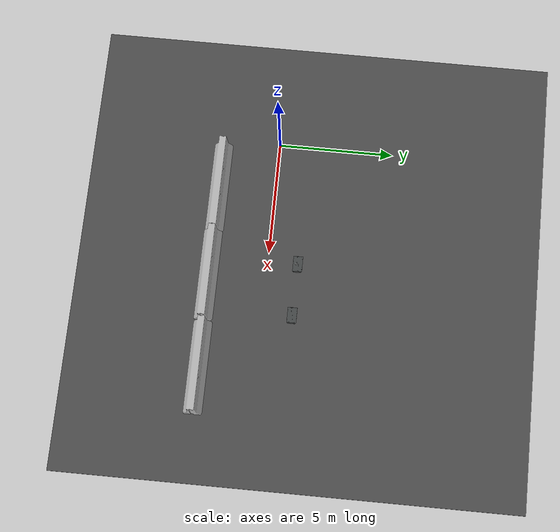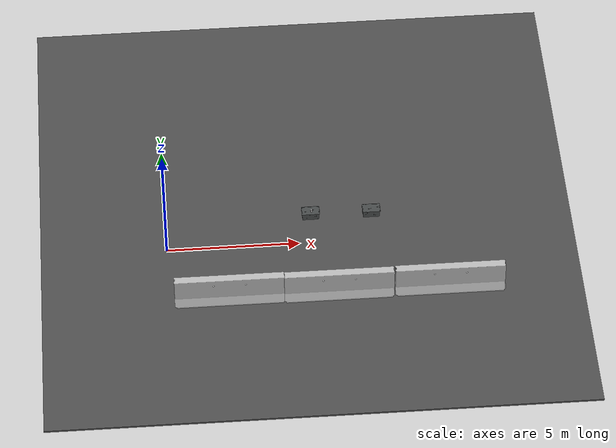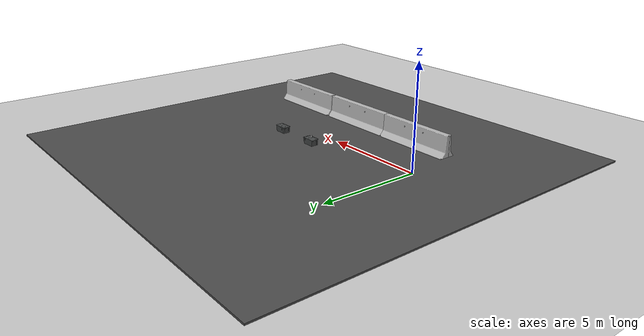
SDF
<sdf version="1.6">
 <world name="default">
  <light name="sun" type="directional">
   <pose>0 0 10 0 -0 0</pose>
   <diffuse>0.8 0.8 0.8 1</diffuse>
   <specular>0.2 0.2 0.2 1</specular>
   <attenuation>
    <range>1000</range>
    <constant>0.9</constant>
    <linear>0.01</linear>
    <quadratic>0.001</quadratic>
   </attenuation>
   <direction>-0.5 0.1 -0.9</direction>
  </light>
  <model name="ground_plane">
   <static>1</static>
   <link name="link">
    <collision name="collision">
     <geometry><plane><normal>0 0 1</normal><size>100 100</size></plane></geometry>
     <surface>
      <contact><collide_bitmask>65535</collide_bitmask></contact>
      <friction><ode><mu>100</mu><mu2>50</mu2></ode></friction>
     </surface>
    </collision>
    <visual name="visual">
     <cast_shadows>0</cast_shadows>
     <geometry><plane><normal>0 0 1</normal><size>100 100</size></plane></geometry>
     <material>
      <script><uri>file://media/materials/scripts/gazebo.material</uri><name>Gazebo/Grey</name></script>
     </material>
    </visual>
   </link>
  </model>
  <gravity>0 0 -9.8</gravity>
  <magnetic_field>6e-06 2.3e-05 -4.2e-05</magnetic_field>
  <atmosphere type="adiabatic"/>
  <physics name="default_physics" default="0" type="ode">
   <max_step_size>0.001</max_step_size>
   <real_time_factor>1</real_time_factor>
   <real_time_update_rate>1000</real_time_update_rate>
  </physics>
  <scene><ambient>0.4 0.4 0.4 1</ambient><background>0.7 0.7 0.7 1</background><shadows>1</shadows></scene>
  <audio><device>default</device></audio>
  <spherical_coordinates>
   <surface_model>EARTH_WGS84</surface_model>
   <latitude_deg>0</latitude_deg>
   <longitude_deg>0</longitude_deg>
   <elevation>0</elevation>
   <heading_deg>0</heading_deg>
  </spherical_coordinates>
  <model name="grey_tote">
   <link name="link">
    <inertial>
     <pose>0 0 0.14155 0 -0 0</pose>
     <mass>3.53802</mass>
     <inertia>
      <ixx>0.0688358</ixx>
      <ixy>0</ixy>
      <ixz>0</ixz>
      <iyy>0.139596</iyy>
      <iyz>0</iyz>
      <izz>0.155909</izz>
     </inertia>
    </inertial>
    <collision name="lid">
     <pose>0 0 0.28958 0 -0 0</pose>
     <geometry><box><size>0.67768 0.41298 0.01588</size></box></geometry>
    </collision>
    <collision name="lid_lip_1">
     <pose>0 0.20063 0.3048 0 -0 0</pose>
     <geometry><box><size>0.65068 0.0105 0.0127</size></box></geometry>
    </collision>
    <collision name="lid_lip_2">
     <pose>0 -0.20063 0.3048 0 -0 0</pose>
     <geometry><box><size>0.65068 0.0105 0.0127</size></box></geometry>
    </collision>
    <collision name="lid_lip_3">
     <pose>0.32585 0 0.3048 0 -0 0</pose>
     <geometry><box><size>0.02602 0.31202 0.0127</size></box></geometry>
    </collision>
    <collision name="lid_lip_4">
     <pose>-0.32585 0 0.3048 0 -0 0</pose>
     <geometry><box><size>0.02602 0.31202 0.0127</size></box></geometry>
    </collision>
    <collision name="side_wall_1">
     <pose>0 -0.18 0.14155 0.061147 -0 0</pose>
     <geometry><box><size>0.58404 0.02602 0.283099</size></box></geometry>
    </collision>
    <collision name="side_wall_2">
     <pose>0 0.18 0.14155 -0.061147 0 0</pose>
     <geometry><box><size>0.58404 0.02602 0.283099</size></box></geometry>
    </collision>
    <collision name="side_wall_3">
     <pose>0.305 0 0.14155 0 0.061147 0</pose>
     <geometry><box><size>0.02602 0.33046 0.283099</size></box></geometry>
    </collision>
    <collision name="side_wall_4">
     <pose>-0.305 0 0.14155 0 -0.061147 0</pose>
     <geometry><box><size>0.02602 0.33046 0.283099</size></box></geometry>
    </collision>
    <collision name="bottom">
     <pose>0 0 0.01 0 -0 0</pose>
     <geometry><box><size>0.58404 0.33046 0.02</size></box></geometry>
    </collision>
    <collision name="corner_1">
     <pose>0.30202 -0.175 0.14155 0.061147 0.061147 -0</pose>
     <geometry><cylinder><radius>0.01268</radius><length>0.283099</length></cylinder></geometry>
    </collision>
    <collision name="corner_2">
     <pose>-0.30202 -0.175 0.14155 0.061147 -0.061147 0</pose>
     <geometry><cylinder><radius>0.01268</radius><length>0.283099</length></cylinder></geometry>
    </collision>
    <collision name="corner_3">
     <pose>-0.30202 0.175 0.14155 -0.061147 -0.061147 -0</pose>
     <geometry><cylinder><radius>0.01268</radius><length>0.283099</length></cylinder></geometry>
    </collision>
    <collision name="corner_4">
     <pose>0.30202 0.175 0.14155 -0.061147 0.061147 0</pose>
     <geometry><cylinder><radius>0.01268</radius><length>0.283099</length></cylinder></geometry>
    </collision>
    <visual name="visual"><geometry><mesh><uri>model://grey_tote/meshes/tote.dae</uri></mesh></geometry></visual>
   </link>
   <pose>5.48435 1.30853 0.050556 0 -0 0.004305</pose>
  </model>
  <model name="coke_can">
   <link name="coke_can::coke_can::link">
    <inertial>
     <pose>0 0 0.06 0 -0 0</pose>
     <mass>0.39</mass>
     <inertia>
      <ixx>0.00055575</ixx>
      <ixy>0</ixy>
      <ixz>0</ixz>
      <iyy>0.00055575</iyy>
      <iyz>0</iyz>
      <izz>0.0001755</izz>
     </inertia>
    </inertial>
    <collision name="collision">
     <pose>0.003937 0.004724 -0.18 0 -0 0</pose>
     <geometry><mesh><uri>model://coke_can/meshes/coke_can.dae</uri></mesh></geometry>
     <surface>
      <friction><ode><mu>1</mu><mu2>1</mu2></ode></friction>
      <contact><ode><kp>1e+07</kp><kd>1</kd><min_depth>0.001</min_depth><max_vel>0.1</max_vel></ode></contact>
     </surface>
    </collision>
    <visual name="visual">
     <pose>0.003937 0.004724 -0.18 0 -0 0</pose>
     <geometry><mesh><uri>model://coke_can/meshes/coke_can.dae</uri></mesh></geometry>
    </visual>
   </link>
   <pose>5.51994 1.24378 0.345491 -0.011209 0.004008 -0.024711</pose>
  </model>
  <model name="jersey_barrier">
   <static>1</static>
   <link name="link">
    <visual name="visual">
     <geometry><mesh><uri>model://jersey_barrier/meshes/jersey_barrier.dae</uri></mesh></geometry>
    </visual>
    <collision name="upright">
     <pose>0 0 0.5715 0 -0 0</pose>
     <geometry><box><size>4.06542 0.3063 1.143</size></box></geometry>
    </collision>
    <collision name="base">
     <pose>0 0 0.032258 0 -0 0</pose>
     <geometry><box><size>4.06542 0.8107 0.064516</size></box></geometry>
    </collision>
    <collision name="base2">
     <pose>0 0 0.1 0 -0 0</pose>
     <geometry><box><size>4.06542 0.65 0.1</size></box></geometry>
    </collision>
    <collision name="base3">
     <pose>0 0 0.2 0 -0 0</pose>
     <geometry><box><size>4.06542 0.5 0.1</size></box></geometry>
    </collision>
    <collision name="left-angle">
     <pose>0 -0.224 0.2401 0.9 -0 0</pose>
     <geometry><box><size>4.06542 0.5 0.064516</size></box></geometry>
    </collision>
    <collision name="right-angle">
     <pose>0 0.224 0.2401 -0.9 0 0</pose>
     <geometry><box><size>4.06542 0.5 0.064516</size></box></geometry>
    </collision>
   </link>
   <pose>2.22447 -2.49996 0 0 -0 0</pose>
  </model>
  <model name="jersey_barrier_clone">
   <static>1</static>
   <link name="link">
    <visual name="visual">
     <geometry><mesh><uri>model://jersey_barrier/meshes/jersey_barrier.dae</uri></mesh></geometry>
    </visual>
    <collision name="upright">
     <pose>0 0 0.5715 0 -0 0</pose>
     <geometry><box><size>4.06542 0.3063 1.143</size></box></geometry>
    </collision>
    <collision name="base">
     <pose>0 0 0.032258 0 -0 0</pose>
     <geometry><box><size>4.06542 0.8107 0.064516</size></box></geometry>
    </collision>
    <collision name="base2">
     <pose>0 0 0.1 0 -0 0</pose>
     <geometry><box><size>4.06542 0.65 0.1</size></box></geometry>
    </collision>
    <collision name="base3">
     <pose>0 0 0.2 0 -0 0</pose>
     <geometry><box><size>4.06542 0.5 0.1</size></box></geometry>
    </collision>
    <collision name="left-angle">
     <pose>0 -0.224 0.2401 0.9 -0 0</pose>
     <geometry><box><size>4.06542 0.5 0.064516</size></box></geometry>
    </collision>
    <collision name="right-angle">
     <pose>0 0.224 0.2401 -0.9 0 0</pose>
     <geometry><box><size>4.06542 0.5 0.064516</size></box></geometry>
    </collision>
   </link>
   <pose>6.25827 -2.52563 0 0 -0 0</pose>
  </model>
  <model name="jersey_barrier_clone_clone">
   <static>1</static>
   <link name="link">
    <visual name="visual">
     <geometry><mesh><uri>model://jersey_barrier/meshes/jersey_barrier.dae</uri></mesh></geometry>
    </visual>
    <collision name="upright">
     <pose>0 0 0.5715 0 -0 0</pose>
     <geometry><box><size>4.06542 0.3063 1.143</size></box></geometry>
    </collision>
    <collision name="base">
     <pose>0 0 0.032258 0 -0 0</pose>
     <geometry><box><size>4.06542 0.8107 0.064516</size></box></geometry>
    </collision>
    <collision name="base2">
     <pose>0 0 0.1 0 -0 0</pose>
     <geometry><box><size>4.06542 0.65 0.1</size></box></geometry>
    </collision>
    <collision name="base3">
     <pose>0 0 0.2 0 -0 0</pose>
     <geometry><box><size>4.06542 0.5 0.1</size></box></geometry>
    </collision>
    <collision name="left-angle">
     <pose>0 -0.224 0.2401 0.9 -0 0</pose>
     <geometry><box><size>4.06542 0.5 0.064516</size></box></geometry>
    </collision>
    <collision name="right-angle">
     <pose>0 0.224 0.2401 -0.9 0 0</pose>
     <geometry><box><size>4.06542 0.5 0.064516</size></box></geometry>
    </collision>
   </link>
   <pose>10.3634 -2.50184 0 0 -0 0</pose>
  </model>
  <model name="asphalt_plane">
   <static>1</static>
   <link name="link">
    <collision name="collision"><geometry><box><size>20 20 0.1</size></box></geometry></collision>
    <visual name="visual">
     <cast_shadows>0</cast_shadows>
     <geometry><box><size>20 20 0.1</size></box></geometry>
     <material>
      <script>
       <uri>model://asphalt_plane/materials/scripts</uri>
       <uri>model://asphalt_plane/materials/textures</uri>
       <name>vrc/asphalt</name>
      </script>
     </material>
    </visual>
   </link>
   <pose>5.30461 1.7319 0 0 -0 0</pose>
  </model>
  <model name="grey_tote_0">
   <link name="link">
    <inertial>
     <pose>0 0 0.14155 0 -0 0</pose>
     <mass>3.53802</mass>
     <inertia>
      <ixx>0.0688358</ixx>
      <ixy>0</ixy>
      <ixz>0</ixz>
      <iyy>0.139596</iyy>
      <iyz>0</iyz>
      <izz>0.155909</izz>
     </inertia>
    </inertial>
    <collision name="lid">
     <pose>0 0 0.28958 0 -0 0</pose>
     <geometry><box><size>0.67768 0.41298 0.01588</size></box></geometry>
    </collision>
    <collision name="lid_lip_1">
     <pose>0 0.20063 0.3048 0 -0 0</pose>
     <geometry><box><size>0.65068 0.0105 0.0127</size></box></geometry>
    </collision>
    <collision name="lid_lip_2">
     <pose>0 -0.20063 0.3048 0 -0 0</pose>
     <geometry><box><size>0.65068 0.0105 0.0127</size></box></geometry>
    </collision>
    <collision name="lid_lip_3">
     <pose>0.32585 0 0.3048 0 -0 0</pose>
     <geometry><box><size>0.02602 0.31202 0.0127</size></box></geometry>
    </collision>
    <collision name="lid_lip_4">
     <pose>-0.32585 0 0.3048 0 -0 0</pose>
     <geometry><box><size>0.02602 0.31202 0.0127</size></box></geometry>
    </collision>
    <collision name="side_wall_1">
     <pose>0 -0.18 0.14155 0.061147 -0 0</pose>
     <geometry><box><size>0.58404 0.02602 0.283099</size></box></geometry>
    </collision>
    <collision name="side_wall_2">
     <pose>0 0.18 0.14155 -0.061147 0 0</pose>
     <geometry><box><size>0.58404 0.02602 0.283099</size></box></geometry>
    </collision>
    <collision name="side_wall_3">
     <pose>0.305 0 0.14155 0 0.061147 0</pose>
     <geometry><box><size>0.02602 0.33046 0.283099</size></box></geometry>
    </collision>
    <collision name="side_wall_4">
     <pose>-0.305 0 0.14155 0 -0.061147 0</pose>
     <geometry><box><size>0.02602 0.33046 0.283099</size></box></geometry>
    </collision>
    <collision name="bottom">
     <pose>0 0 0.01 0 -0 0</pose>
     <geometry><box><size>0.58404 0.33046 0.02</size></box></geometry>
    </collision>
    <collision name="corner_1">
     <pose>0.30202 -0.175 0.14155 0.061147 0.061147 -0</pose>
     <geometry><cylinder><radius>0.01268</radius><length>0.283099</length></cylinder></geometry>
    </collision>
    <collision name="corner_2">
     <pose>-0.30202 -0.175 0.14155 0.061147 -0.061147 0</pose>
     <geometry><cylinder><radius>0.01268</radius><length>0.283099</length></cylinder></geometry>
    </collision>
    <collision name="corner_3">
     <pose>-0.30202 0.175 0.14155 -0.061147 -0.061147 -0</pose>
     <geometry><cylinder><radius>0.01268</radius><length>0.283099</length></cylinder></geometry>
    </collision>
    <collision name="corner_4">
     <pose>0.30202 0.175 0.14155 -0.061147 0.061147 0</pose>
     <geometry><cylinder><radius>0.01268</radius><length>0.283099</length></cylinder></geometry>
    </collision>
    <visual name="visual"><geometry><mesh><uri>model://grey_tote/meshes/tote.dae</uri></mesh></geometry></visual>
   </link>
   <pose>7.77705 1.28419 0.050561 -0 -1.6e-05 -0.000229</pose>
  </model>
 </world>
</sdf>
